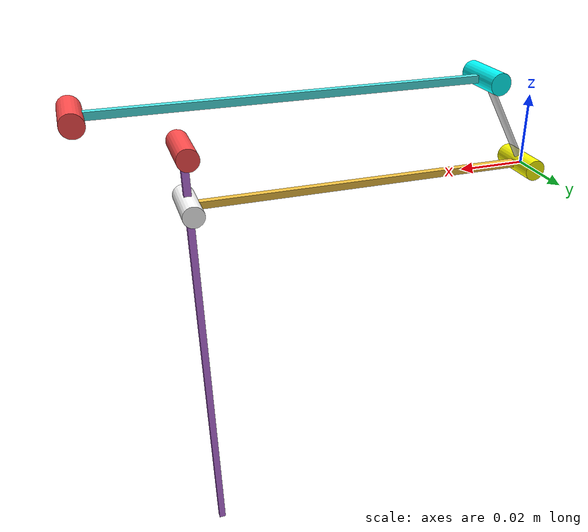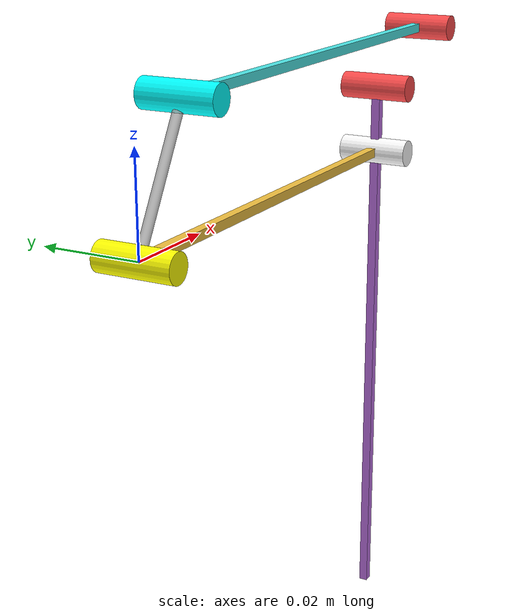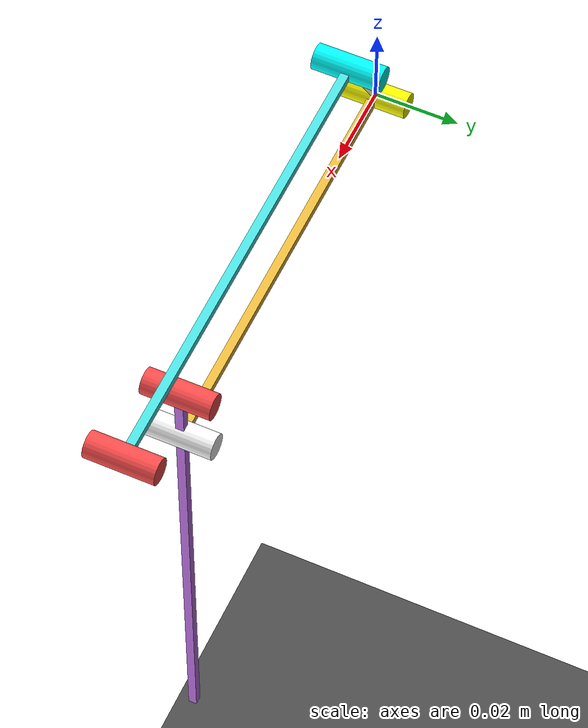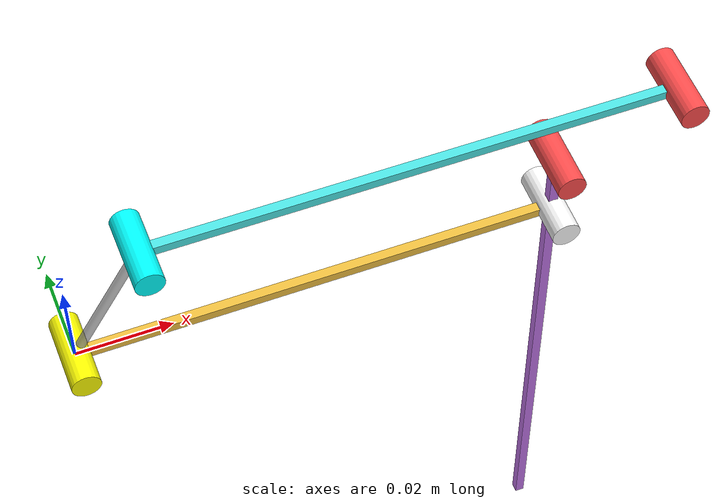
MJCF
<mujoco model="step07_4bar">

  <option gravity="0 0 -9.81" timestep="0.0002" iterations="100" tolerance="1e-10"/>

  <worldbody>
    <light diffuse=".6 .6 .6" pos="0 -1 1" dir="0 1 -1"/>
    <geom type="plane" size="0.5 0.5 0.01" pos="0 0 -0.3"
          rgba="0.3 0.3 0.3 1" contype="0" conaffinity="0"/>

    <!-- Fixed ground body — A at origin, F at (+15mm, 0, +26mm) -->
    <body name="ground" pos="0 0 0">

      <!-- Ground link A→F (visual only) -->
      <geom type="cylinder" fromto="0 0 0  0.015 0 0.026"
            size="0.001" rgba="0.7 0.7 0.7 0.8"
            contype="0" conaffinity="0" mass="0"/>

      <!-- Hinge pin at A (hip pivot) — cylinder along Y axis -->
      <geom type="cylinder" pos="0 0 0" euler="90 0 0"
            size="0.003 0.008" rgba="1 1 0 0.9"
            contype="0" conaffinity="0" mass="0"/>
      <!-- Hinge pin at F (coupler-ground pivot, ground side) -->
      <geom type="cylinder" pos="0.015 0 0.026" euler="90 0 0"
            size="0.003 0.008" rgba="0 1 1 0.9"
            contype="0" conaffinity="0" mass="0"/>

      <!-- Femur: hinge_hip at A, extends 100mm along +X at joint=0 -->
      <body name="femur" pos="0 0 0">
        <joint name="hinge_hip" type="hinge" axis="0 1 0" pos="0 0 0" damping="5"/>
        <geom name="femur_geom" type="box"
              pos="0.05 0 0" size="0.05 0.001 0.001"
              rgba="0.94 0.75 0.25 1" contype="0" conaffinity="0" mass="0.025"/>
        <!-- Hinge pin at C (knee pivot) -->
        <geom type="cylinder" pos="0.1 0 0" euler="90 0 0"
              size="0.003 0.008" rgba="1 1 1 0.9"
              contype="0" conaffinity="0" mass="0"/>

        <!-- Tibia: hinge_knee at C; stub +15mm (+Z), wheel -115mm (-Z) -->
        <body name="tibia" pos="0.1 0 0">
          <joint name="hinge_knee" type="hinge" axis="0 1 0" pos="0 0 0" damping="5"/>
          <!-- Total 130mm, centre at z=(0.015−0.115)/2 = −0.05 -->
          <geom name="tibia_geom" type="box"
                pos="0 0 -0.05" size="0.001 0.001 0.065"
                rgba="0.75 0.45 0.90 1" contype="0" conaffinity="0" mass="0.035"/>
          <!-- Hinge pin at E (connect constraint point, tibia side) -->
          <geom type="cylinder" pos="0 0 0.015" euler="90 0 0"
                size="0.003 0.008" rgba="1 0.3 0.3 0.9"
                contype="0" conaffinity="0" mass="0"/>
        </body><!-- tibia -->
      </body><!-- femur -->

      <!-- Coupler: hinge_F at F (body origin), tip extends 110mm toward E -->
      <body name="coupler" pos="0.015 0 0.026">
        <joint name="hinge_F" type="hinge" axis="0 1 0" pos="0 0 0" damping="5"/>
        <geom name="coupler_geom" type="box"
              pos="0.055 0 0" size="0.055 0.001 0.001"
              rgba="0.30 0.90 0.90 1" contype="0" conaffinity="0" mass="0.015"/>
        <!-- Hinge pin at E (connect constraint point, coupler side) -->
        <geom type="cylinder" pos="0.110 0 0" euler="90 0 0"
              size="0.003 0.008" rgba="1 0.3 0.3 0.9"
              contype="0" conaffinity="0" mass="0"/>
      </body><!-- coupler -->

    </body><!-- ground -->
  </worldbody>

  <!-- Closes the 4-bar loop: coupler tip (E) → tibia at E.
       Both anchors are set correctly in run_step07.py. -->
  <equality>
    <connect name="4bar_close" body1="coupler" body2="tibia" anchor="0.110 0 0"
             solref="0.002 1" solimp="0.9999 0.9999 0.001"/>
  </equality>

  <!-- hip_pos slider in Controls panel; ctrlrange matches step07 hip 0°–65° in MuJoCo qpos -->
  <actuator>
    <!-- ctrlrange maps step07 hip 10.5°–76° (2° margin inside singularity limits 8.5°–78°)
         q = π/2 − hip_rad:  76° → 0.244 rad,  10.5° → 1.388 rad -->
    <position name="hip_pos" joint="hinge_hip" kp="10000" ctrlrange="0.244 1.388"/>
  </actuator>

</mujoco>
